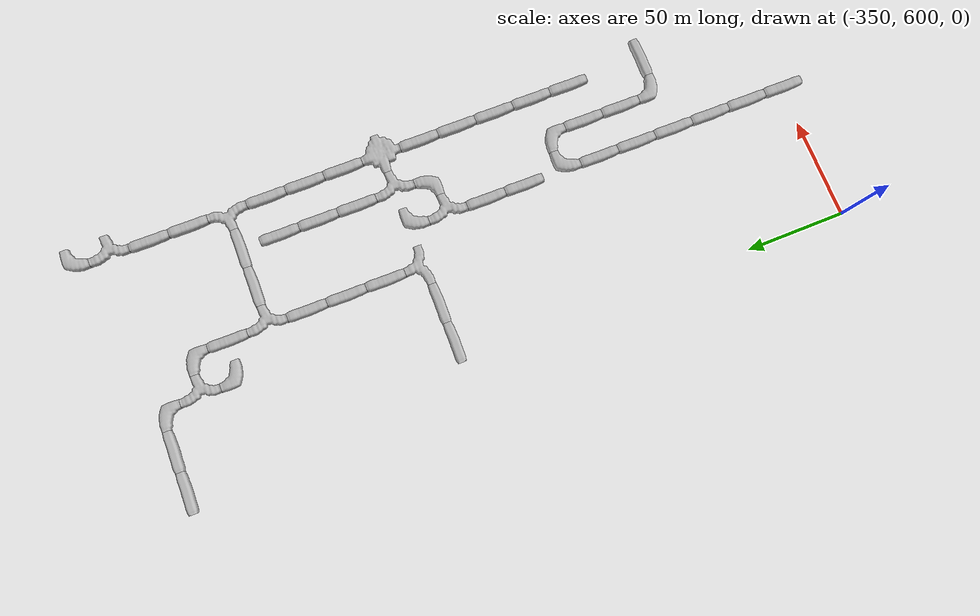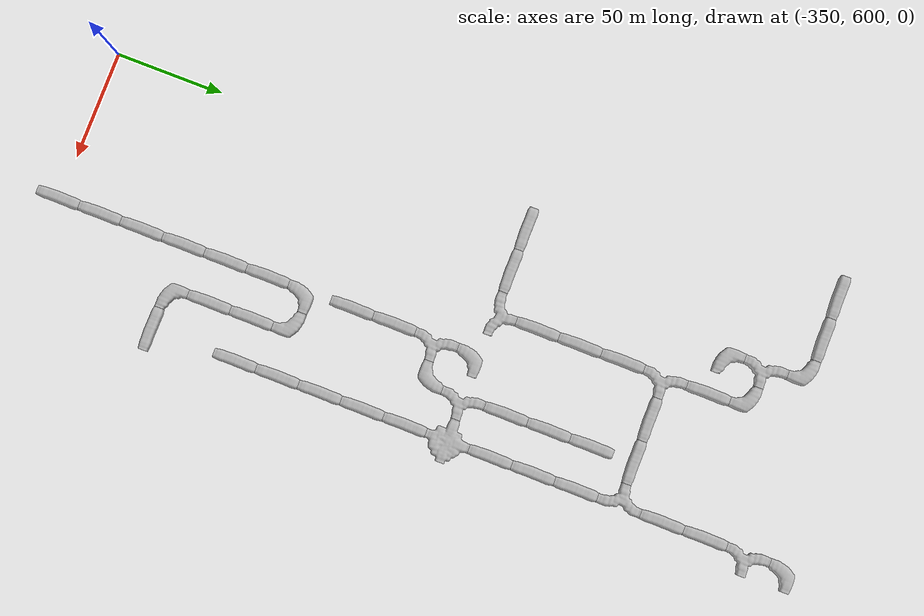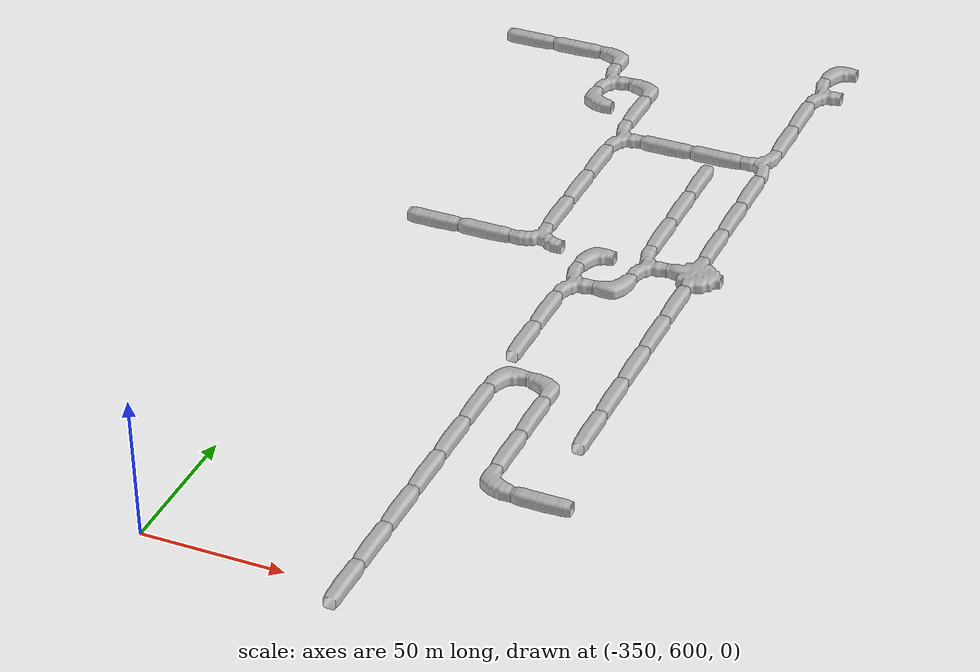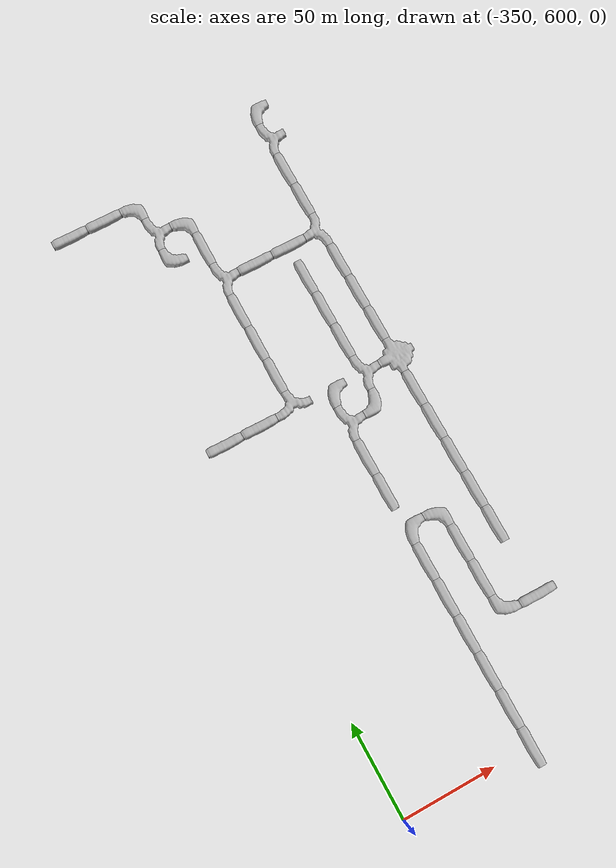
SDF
<sdf version="1.6">
 <world name="cave_16000">
  <include>
   <static>true</static>
   <name>cave_-14_30</name>
   <pose>-280 600 0 0 0 0.0</pose>
   <uri>model://cave_straight_20m</uri>
  </include>
  <include>
   <static>true</static>
   <name>cave_-14_31</name>
   <pose>-280 620 0 0 0 0.0</pose>
   <uri>model://cave_straight_20m</uri>
  </include>
  <include>
   <static>true</static>
   <name>cave_-14_32</name>
   <pose>-280 640 0 0 0 0.0</pose>
   <uri>model://cave_straight_20m</uri>
  </include>
  <include>
   <static>true</static>
   <name>cave_-14_33</name>
   <pose>-280 660 0 0 0 0.0</pose>
   <uri>model://cave_straight_20m</uri>
  </include>
  <include>
   <static>true</static>
   <name>cave_-14_34</name>
   <pose>-280 680 0 0 0 0.0</pose>
   <uri>model://cave_straight_20m</uri>
  </include>
  <include>
   <static>true</static>
   <name>cave_-14_35</name>
   <pose>-280 700 0 0 0 0.0</pose>
   <uri>model://cave_straight_20m</uri>
  </include>
  <include>
   <static>true</static>
   <name>cave_-14_36</name>
   <pose>-280 720 0 0 0 -1.5707963267948966</pose>
   <uri>model://cave_L_20m</uri>
  </include>
  <include>
   <static>true</static>
   <name>cave_-13_36</name>
   <pose>-260 720 0 0 0 3.141592653589793</pose>
   <uri>model://cave_L_20m</uri>
  </include>
  <include>
   <static>true</static>
   <name>cave_-13_35</name>
   <pose>-260 700 0 0 0 0.0</pose>
   <uri>model://cave_straight_20m</uri>
  </include>
  <include>
   <static>true</static>
   <name>cave_-13_34</name>
   <pose>-260 680 0 0 0 0.0</pose>
   <uri>model://cave_straight_20m</uri>
  </include>
  <include>
   <static>true</static>
   <name>cave_-13_33</name>
   <pose>-260 660 0 0 0 0.0</pose>
   <uri>model://cave_L_20m</uri>
  </include>
  <include>
   <static>true</static>
   <name>cave_-12_33</name>
   <pose>-240 660 0 0 0 1.5707963267948966</pose>
   <uri>model://cave_straight_20m</uri>
  </include>
  <include>
   <static>true</static>
   <name>cave_-12_47</name>
   <pose>-240 940 0 0 0 -1.5707963267948966</pose>
   <uri>model://cave_3way_20m</uri>
  </include>
  <include>
   <static>true</static>
   <name>cave_-12_46</name>
   <pose>-240 920 0 0 0 0.0</pose>
   <uri>model://cave_straight_20m</uri>
  </include>
  <include>
   <static>true</static>
   <name>cave_-12_45</name>
   <pose>-240 900 0 0 0 0.0</pose>
   <uri>model://cave_straight_20m</uri>
  </include>
  <include>
   <static>true</static>
   <name>cave_-12_44</name>
   <pose>-240 880 0 0 0 1.5707963267948966</pose>
   <uri>model://cave_3way_20m</uri>
  </include>
  <include>
   <static>true</static>
   <name>cave_-12_43</name>
   <pose>-240 860 0 0 0 0.0</pose>
   <uri>model://cave_straight_20m</uri>
  </include>
  <include>
   <static>true</static>
   <name>cave_-12_42</name>
   <pose>-240 840 0 0 0 0.0</pose>
   <uri>model://cave_straight_20m</uri>
  </include>
  <include>
   <static>true</static>
   <name>cave_-12_41</name>
   <pose>-240 820 0 0 0 0.0</pose>
   <uri>model://cave_straight_20m</uri>
  </include>
  <include>
   <static>true</static>
   <name>cave_-12_40</name>
   <pose>-240 800 0 0 0 -1.5707963267948966</pose>
   <uri>model://cave_4way_20m</uri>
  </include>
  <include>
   <static>true</static>
   <name>cave_-12_39</name>
   <pose>-240 780 0 0 0 0.0</pose>
   <uri>model://cave_straight_20m</uri>
  </include>
  <include>
   <static>true</static>
   <name>cave_-12_38</name>
   <pose>-240 760 0 0 0 0.0</pose>
   <uri>model://cave_straight_20m</uri>
  </include>
  <include>
   <static>true</static>
   <name>cave_-12_37</name>
   <pose>-240 740 0 0 0 0.0</pose>
   <uri>model://cave_straight_20m</uri>
  </include>
  <include>
   <static>true</static>
   <name>cave_-12_36</name>
   <pose>-240 720 0 0 0 0.0</pose>
   <uri>model://cave_straight_20m</uri>
  </include>
  <include>
   <static>true</static>
   <name>cave_-12_35</name>
   <pose>-240 700 0 0 0 0.0</pose>
   <uri>model://cave_straight_20m</uri>
  </include>
  <include>
   <static>true</static>
   <name>cave_-13_40</name>
   <pose>-260 800 0 0 0 -1.5707963267948966</pose>
   <uri>model://cave_3way_20m</uri>
  </include>
  <include>
   <static>true</static>
   <name>cave_-13_39</name>
   <pose>-260 780 0 0 0 1.5707963267948966</pose>
   <uri>model://cave_L_20m</uri>
  </include>
  <include>
   <static>true</static>
   <name>cave_-14_39</name>
   <pose>-280 780 0 0 0 -1.5707963267948966</pose>
   <uri>model://cave_3way_20m</uri>
  </include>
  <include>
   <static>true</static>
   <name>cave_-14_38</name>
   <pose>-280 760 0 0 0 0.0</pose>
   <uri>model://cave_straight_20m</uri>
  </include>
  <include>
   <static>true</static>
   <name>cave_-14_37</name>
   <pose>-280 740 0 0 0 0.0</pose>
   <uri>model://cave_straight_20m</uri>
  </include>
  <include>
   <static>true</static>
   <name>cave_-14_40</name>
   <pose>-280 800 0 0 0 -1.5707963267948966</pose>
   <uri>model://cave_L_20m</uri>
  </include>
  <include>
   <static>true</static>
   <name>cave_-13_41</name>
   <pose>-260 820 0 0 0 0.0</pose>
   <uri>model://cave_straight_20m</uri>
  </include>
  <include>
   <static>true</static>
   <name>cave_-13_42</name>
   <pose>-260 840 0 0 0 0.0</pose>
   <uri>model://cave_straight_20m</uri>
  </include>
  <include>
   <static>true</static>
   <name>cave_-13_43</name>
   <pose>-260 860 0 0 0 0.0</pose>
   <uri>model://cave_straight_20m</uri>
  </include>
  <include>
   <static>true</static>
   <name>cave_-13_44</name>
   <pose>-260 880 0 0 0 1.5707963267948966</pose>
   <uri>model://cave_straight_20m</uri>
  </include>
  <include>
   <static>true</static>
   <name>cave_-14_44</name>
   <pose>-280 880 0 0 0 1.5707963267948966</pose>
   <uri>model://cave_straight_20m</uri>
  </include>
  <include>
   <static>true</static>
   <name>cave_-15_44</name>
   <pose>-300 880 0 0 0 -1.5707963267948966</pose>
   <uri>model://cave_3way_20m</uri>
  </include>
  <include>
   <static>true</static>
   <name>cave_-15_43</name>
   <pose>-300 860 0 0 0 0.0</pose>
   <uri>model://cave_straight_20m</uri>
  </include>
  <include>
   <static>true</static>
   <name>cave_-15_42</name>
   <pose>-300 840 0 0 0 0.0</pose>
   <uri>model://cave_straight_20m</uri>
  </include>
  <include>
   <static>true</static>
   <name>cave_-15_41</name>
   <pose>-300 820 0 0 0 0.0</pose>
   <uri>model://cave_straight_20m</uri>
  </include>
  <include>
   <static>true</static>
   <name>cave_-15_40</name>
   <pose>-300 800 0 0 0 0.0</pose>
   <uri>model://cave_3way_20m</uri>
  </include>
  <include>
   <static>true</static>
   <name>cave_-16_40</name>
   <pose>-320 800 0 0 0 1.5707963267948966</pose>
   <uri>model://cave_straight_20m</uri>
  </include>
  <include>
   <static>true</static>
   <name>cave_-17_40</name>
   <pose>-340 800 0 0 0 1.5707963267948966</pose>
   <uri>model://cave_straight_20m</uri>
  </include>
  <include>
   <static>true</static>
   <name>cave_-15_45</name>
   <pose>-300 900 0 0 0 0.0</pose>
   <uri>model://cave_straight_20m</uri>
  </include>
  <include>
   <static>true</static>
   <name>cave_-15_46</name>
   <pose>-300 920 0 0 0 3.141592653589793</pose>
   <uri>model://cave_L_20m</uri>
  </include>
  <include>
   <static>true</static>
   <name>cave_-16_46</name>
   <pose>-320 920 0 0 0 -1.5707963267948966</pose>
   <uri>model://cave_3way_20m</uri>
  </include>
  <include>
   <static>true</static>
   <name>cave_-16_45</name>
   <pose>-320 900 0 0 0 0.0</pose>
   <uri>model://cave_L_20m</uri>
  </include>
  <include>
   <static>true</static>
   <name>cave_-16_47</name>
   <pose>-320 940 0 0 0 3.141592653589793</pose>
   <uri>model://cave_L_20m</uri>
  </include>
  <include>
   <static>true</static>
   <name>cave_-17_47</name>
   <pose>-340 940 0 0 0 1.5707963267948966</pose>
   <uri>model://cave_straight_20m</uri>
  </include>
  <include>
   <static>true</static>
   <name>cave_-18_47</name>
   <pose>-360 940 0 0 0 1.5707963267948966</pose>
   <uri>model://cave_straight_20m</uri>
  </include>
  <include>
   <static>true</static>
   <name>cave_-12_48</name>
   <pose>-240 960 0 0 0 -1.5707963267948966</pose>
   <uri>model://cave_L_20m</uri>
  </include>
 </world>
</sdf>
